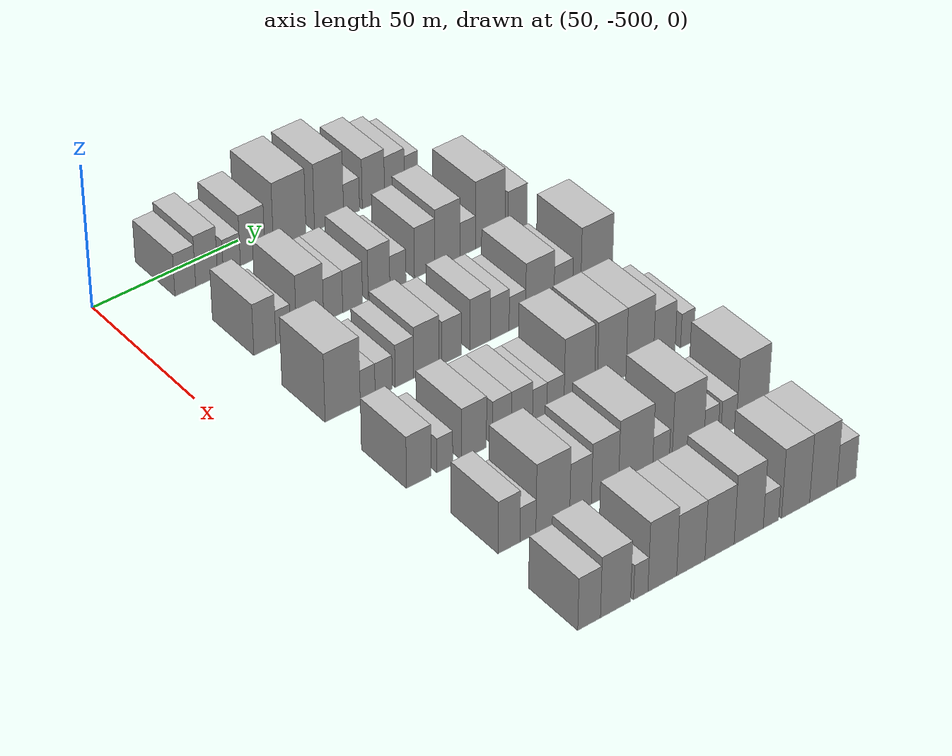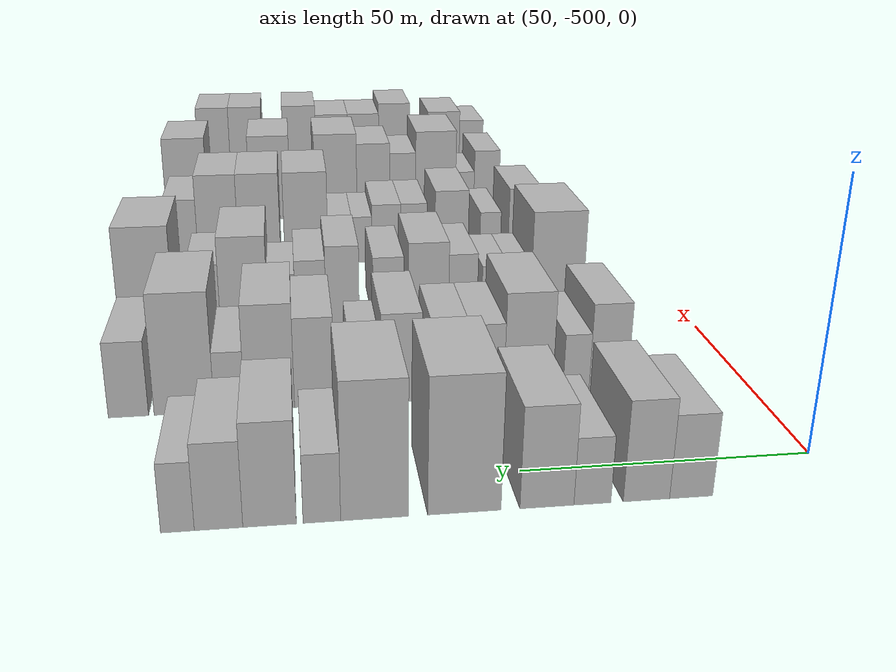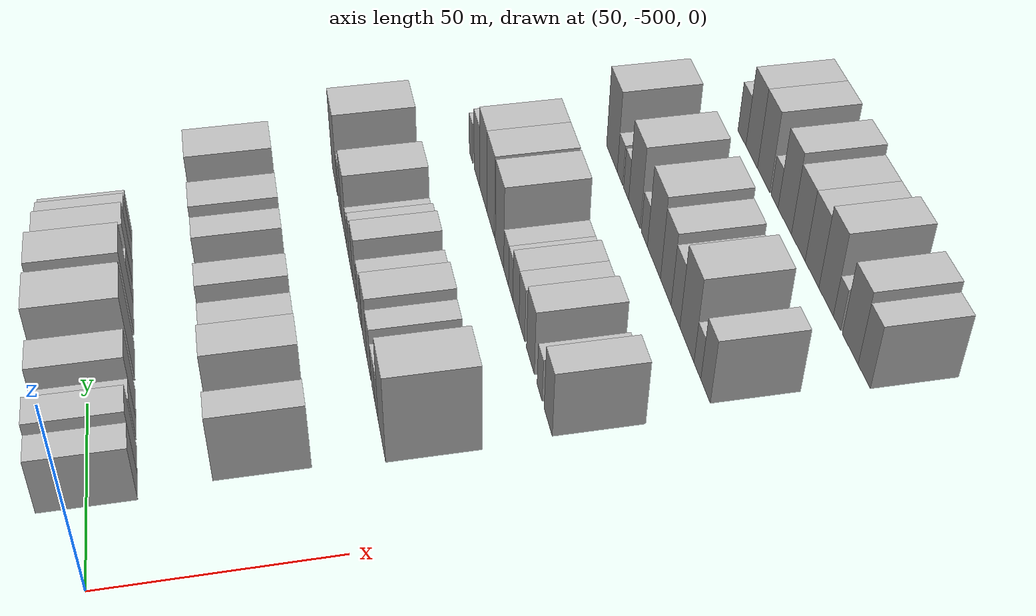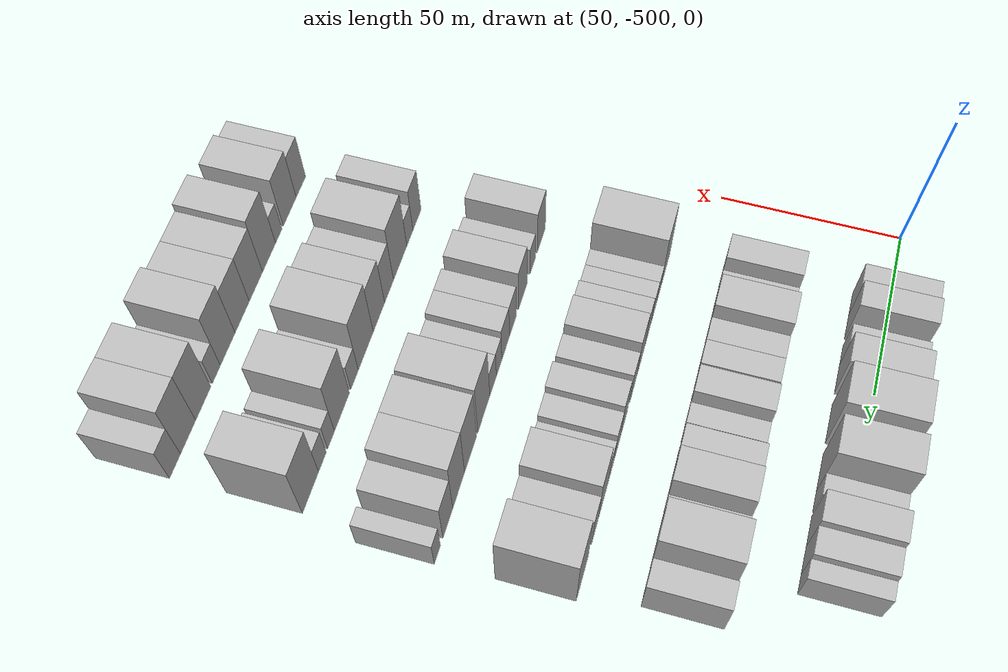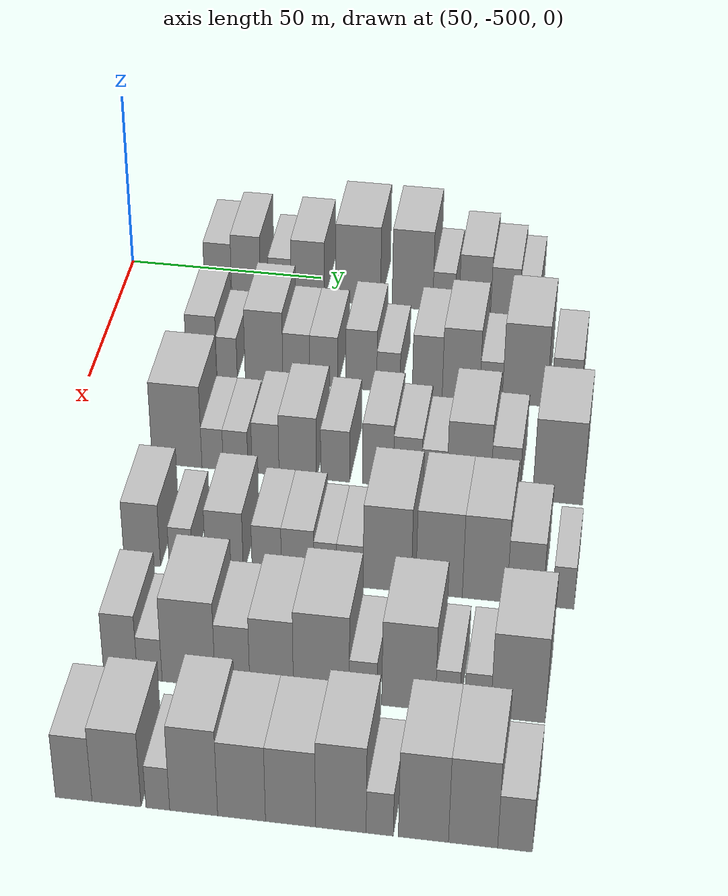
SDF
<sdf version="1.6">
 <world name="default">
  <model name="building_12">
   <static>1</static>
   <pose>50.0000 -475.3370 0 0.000000 0.000000 0.000000</pose>
   <link name="link">
    <pose>0 0 7.50 0 0 0</pose>
    <collision name="collision"><geometry><box><size>20.0000 7.0888 15.0000</size></box></geometry></collision>
    <visual name="visual">
     <cast_shadows>0</cast_shadows>
     <geometry><box><size>20.0000 7.0888 15.0000</size></box></geometry>
     <material>
      <script>
       <uri>model://HANNAS_wall/materials/scripts</uri>
       <uri>model://HANNAS_wall/materials/textures</uri>
       <name>vrc/HANNAS_wall</name>
      </script>
     </material>
    </visual>
   </link>
  </model>
  <model name="building_13">
   <static>1</static>
   <pose>50.0000 -468.0151 0 0.000000 0.000000 0.000000</pose>
   <link name="link">
    <pose>0 0 9.00 0 0 0</pose>
    <collision name="collision"><geometry><box><size>20.0000 7.5550 18.0000</size></box></geometry></collision>
    <visual name="visual">
     <cast_shadows>0</cast_shadows>
     <geometry><box><size>20.0000 7.5550 18.0000</size></box></geometry>
     <material>
      <script>
       <uri>model://HANNAS_wall/materials/scripts</uri>
       <uri>model://HANNAS_wall/materials/textures</uri>
       <name>vrc/HANNAS_wall</name>
      </script>
     </material>
    </visual>
   </link>
  </model>
  <model name="building_14">
   <static>1</static>
   <pose>50.0000 -459.2626 0 0.000000 0.000000 0.000000</pose>
   <link name="link">
    <pose>0 0 6.00 0 0 0</pose>
    <collision name="collision"><geometry><box><size>20.0000 5.9500 12.0000</size></box></geometry></collision>
    <visual name="visual">
     <cast_shadows>0</cast_shadows>
     <geometry><box><size>20.0000 5.9500 12.0000</size></box></geometry>
     <material>
      <script>
       <uri>model://HANNAS_wall/materials/scripts</uri>
       <uri>model://HANNAS_wall/materials/textures</uri>
       <name>vrc/HANNAS_wall</name>
      </script>
     </material>
    </visual>
   </link>
  </model>
  <model name="building_15">
   <static>1</static>
   <pose>50.0000 -451.9776 0 0.000000 0.000000 0.000000</pose>
   <link name="link">
    <pose>0 0 9.00 0 0 0</pose>
    <collision name="collision"><geometry><box><size>20.0000 8.6199 18.0000</size></box></geometry></collision>
    <visual name="visual">
     <cast_shadows>0</cast_shadows>
     <geometry><box><size>20.0000 8.6199 18.0000</size></box></geometry>
     <material>
      <script>
       <uri>model://HANNAS_wall/materials/scripts</uri>
       <uri>model://HANNAS_wall/materials/textures</uri>
       <name>vrc/HANNAS_wall</name>
      </script>
     </material>
    </visual>
   </link>
  </model>
  <model name="building_16">
   <static>1</static>
   <pose>50.0000 -438.9100 0 0.000000 0.000000 0.000000</pose>
   <link name="link">
    <pose>0 0 12.00 0 0 0</pose>
    <collision name="collision"><geometry><box><size>20.0000 11.5154 24.0000</size></box></geometry></collision>
    <visual name="visual">
     <cast_shadows>0</cast_shadows>
     <geometry><box><size>20.0000 11.5154 24.0000</size></box></geometry>
     <material>
      <script>
       <uri>model://HANNAS_wall/materials/scripts</uri>
       <uri>model://HANNAS_wall/materials/textures</uri>
       <name>vrc/HANNAS_wall</name>
      </script>
     </material>
    </visual>
   </link>
  </model>
  <model name="building_17">
   <static>1</static>
   <pose>50.0000 -424.9383 0 0.000000 0.000000 0.000000</pose>
   <link name="link">
    <pose>0 0 12.00 0 0 0</pose>
    <collision name="collision"><geometry><box><size>20.0000 10.4280 24.0000</size></box></geometry></collision>
    <visual name="visual">
     <cast_shadows>0</cast_shadows>
     <geometry><box><size>20.0000 10.4280 24.0000</size></box></geometry>
     <material>
      <script>
       <uri>model://HANNAS_wall/materials/scripts</uri>
       <uri>model://HANNAS_wall/materials/textures</uri>
       <name>vrc/HANNAS_wall</name>
      </script>
     </material>
    </visual>
   </link>
  </model>
  <model name="building_18">
   <static>1</static>
   <pose>50.0000 -416.8632 0 0.000000 0.000000 0.000000</pose>
   <link name="link">
    <pose>0 0 6.00 0 0 0</pose>
    <collision name="collision"><geometry><box><size>20.0000 5.7221 12.0000</size></box></geometry></collision>
    <visual name="visual">
     <cast_shadows>0</cast_shadows>
     <geometry><box><size>20.0000 5.7221 12.0000</size></box></geometry>
     <material>
      <script>
       <uri>model://HANNAS_wall/materials/scripts</uri>
       <uri>model://HANNAS_wall/materials/textures</uri>
       <name>vrc/HANNAS_wall</name>
      </script>
     </material>
    </visual>
   </link>
  </model>
  <model name="building_19">
   <static>1</static>
   <pose>50.0000 -408.9586 0 0.000000 0.000000 0.000000</pose>
   <link name="link">
    <pose>0 0 9.00 0 0 0</pose>
    <collision name="collision"><geometry><box><size>20.0000 8.0872 18.0000</size></box></geometry></collision>
    <visual name="visual">
     <cast_shadows>0</cast_shadows>
     <geometry><box><size>20.0000 8.0872 18.0000</size></box></geometry>
     <material>
      <script>
       <uri>model://HANNAS_wall/materials/scripts</uri>
       <uri>model://HANNAS_wall/materials/textures</uri>
       <name>vrc/HANNAS_wall</name>
      </script>
     </material>
    </visual>
   </link>
  </model>
  <model name="building_20">
   <static>1</static>
   <pose>50.0000 -401.2958 0 0.000000 0.000000 0.000000</pose>
   <link name="link">
    <pose>0 0 7.50 0 0 0</pose>
    <collision name="collision"><geometry><box><size>20.0000 7.2384 15.0000</size></box></geometry></collision>
    <visual name="visual">
     <cast_shadows>0</cast_shadows>
     <geometry><box><size>20.0000 7.2384 15.0000</size></box></geometry>
     <material>
      <script>
       <uri>model://HANNAS_wall/materials/scripts</uri>
       <uri>model://HANNAS_wall/materials/textures</uri>
       <name>vrc/HANNAS_wall</name>
      </script>
     </material>
    </visual>
   </link>
  </model>
  <model name="building_21">
   <static>1</static>
   <pose>50.0000 -395.1728 0 0.000000 0.000000 0.000000</pose>
   <link name="link">
    <pose>0 0 6.00 0 0 0</pose>
    <collision name="collision"><geometry><box><size>20.0000 5.0076 12.0000</size></box></geometry></collision>
    <visual name="visual">
     <cast_shadows>0</cast_shadows>
     <geometry><box><size>20.0000 5.0076 12.0000</size></box></geometry>
     <material>
      <script>
       <uri>model://HANNAS_wall/materials/scripts</uri>
       <uri>model://HANNAS_wall/materials/textures</uri>
       <name>vrc/HANNAS_wall</name>
      </script>
     </material>
    </visual>
   </link>
  </model>
  <model name="building_140">
   <static>1</static>
   <pose>85.0000 -472.7202 0 0.000000 0.000000 0.000000</pose>
   <link name="link">
    <pose>0 0 9.00 0 0 0</pose>
    <collision name="collision"><geometry><box><size>20.0000 7.5059 18.0000</size></box></geometry></collision>
    <visual name="visual">
     <cast_shadows>0</cast_shadows>
     <geometry><box><size>20.0000 7.5059 18.0000</size></box></geometry>
     <material>
      <script>
       <uri>model://HANNAS_wall/materials/scripts</uri>
       <uri>model://HANNAS_wall/materials/textures</uri>
       <name>vrc/HANNAS_wall</name>
      </script>
     </material>
    </visual>
   </link>
  </model>
  <model name="building_141">
   <static>1</static>
   <pose>85.0000 -466.4305 0 0.000000 0.000000 0.000000</pose>
   <link name="link">
    <pose>0 0 6.00 0 0 0</pose>
    <collision name="collision"><geometry><box><size>20.0000 5.0734 12.0000</size></box></geometry></collision>
    <visual name="visual">
     <cast_shadows>0</cast_shadows>
     <geometry><box><size>20.0000 5.0734 12.0000</size></box></geometry>
     <material>
      <script>
       <uri>model://HANNAS_wall/materials/scripts</uri>
       <uri>model://HANNAS_wall/materials/textures</uri>
       <name>vrc/HANNAS_wall</name>
      </script>
     </material>
    </visual>
   </link>
  </model>
  <model name="building_142">
   <static>1</static>
   <pose>85.0000 -457.2018 0 0.000000 0.000000 0.000000</pose>
   <link name="link">
    <pose>0 0 10.50 0 0 0</pose>
    <collision name="collision"><geometry><box><size>20.0000 9.3842 21.0000</size></box></geometry></collision>
    <visual name="visual">
     <cast_shadows>0</cast_shadows>
     <geometry><box><size>20.0000 9.3842 21.0000</size></box></geometry>
     <material>
      <script>
       <uri>model://HANNAS_wall/materials/scripts</uri>
       <uri>model://HANNAS_wall/materials/textures</uri>
       <name>vrc/HANNAS_wall</name>
      </script>
     </material>
    </visual>
   </link>
  </model>
  <model name="building_143">
   <static>1</static>
   <pose>85.0000 -449.2077 0 0.000000 0.000000 0.000000</pose>
   <link name="link">
    <pose>0 0 7.50 0 0 0</pose>
    <collision name="collision"><geometry><box><size>20.0000 6.6040 15.0000</size></box></geometry></collision>
    <visual name="visual">
     <cast_shadows>0</cast_shadows>
     <geometry><box><size>20.0000 6.6040 15.0000</size></box></geometry>
     <material>
      <script>
       <uri>model://HANNAS_wall/materials/scripts</uri>
       <uri>model://HANNAS_wall/materials/textures</uri>
       <name>vrc/HANNAS_wall</name>
      </script>
     </material>
    </visual>
   </link>
  </model>
  <model name="building_144">
   <static>1</static>
   <pose>85.0000 -442.4402 0 0.000000 0.000000 0.000000</pose>
   <link name="link">
    <pose>0 0 7.50 0 0 0</pose>
    <collision name="collision"><geometry><box><size>20.0000 6.9310 15.0000</size></box></geometry></collision>
    <visual name="visual">
     <cast_shadows>0</cast_shadows>
     <geometry><box><size>20.0000 6.9310 15.0000</size></box></geometry>
     <material>
      <script>
       <uri>model://HANNAS_wall/materials/scripts</uri>
       <uri>model://HANNAS_wall/materials/textures</uri>
       <name>vrc/HANNAS_wall</name>
      </script>
     </material>
    </visual>
   </link>
  </model>
  <model name="building_145">
   <static>1</static>
   <pose>85.0000 -433.1577 0 0.000000 0.000000 0.000000</pose>
   <link name="link">
    <pose>0 0 9.00 0 0 0</pose>
    <collision name="collision"><geometry><box><size>20.0000 7.6341 18.0000</size></box></geometry></collision>
    <visual name="visual">
     <cast_shadows>0</cast_shadows>
     <geometry><box><size>20.0000 7.6341 18.0000</size></box></geometry>
     <material>
      <script>
       <uri>model://HANNAS_wall/materials/scripts</uri>
       <uri>model://HANNAS_wall/materials/textures</uri>
       <name>vrc/HANNAS_wall</name>
      </script>
     </material>
    </visual>
   </link>
  </model>
  <model name="building_146">
   <static>1</static>
   <pose>85.0000 -426.4734 0 0.000000 0.000000 0.000000</pose>
   <link name="link">
    <pose>0 0 6.00 0 0 0</pose>
    <collision name="collision"><geometry><box><size>20.0000 5.7345 12.0000</size></box></geometry></collision>
    <visual name="visual">
     <cast_shadows>0</cast_shadows>
     <geometry><box><size>20.0000 5.7345 12.0000</size></box></geometry>
     <material>
      <script>
       <uri>model://HANNAS_wall/materials/scripts</uri>
       <uri>model://HANNAS_wall/materials/textures</uri>
       <name>vrc/HANNAS_wall</name>
      </script>
     </material>
    </visual>
   </link>
  </model>
  <model name="building_147">
   <static>1</static>
   <pose>85.0000 -416.9375 0 0.000000 0.000000 0.000000</pose>
   <link name="link">
    <pose>0 0 9.00 0 0 0</pose>
    <collision name="collision"><geometry><box><size>20.0000 7.3373 18.0000</size></box></geometry></collision>
    <visual name="visual">
     <cast_shadows>0</cast_shadows>
     <geometry><box><size>20.0000 7.3373 18.0000</size></box></geometry>
     <material>
      <script>
       <uri>model://HANNAS_wall/materials/scripts</uri>
       <uri>model://HANNAS_wall/materials/textures</uri>
       <name>vrc/HANNAS_wall</name>
      </script>
     </material>
    </visual>
   </link>
  </model>
  <model name="building_148">
   <static>1</static>
   <pose>85.0000 -408.7095 0 0.000000 0.000000 0.000000</pose>
   <link name="link">
    <pose>0 0 10.50 0 0 0</pose>
    <collision name="collision"><geometry><box><size>20.0000 9.1188 21.0000</size></box></geometry></collision>
    <visual name="visual">
     <cast_shadows>0</cast_shadows>
     <geometry><box><size>20.0000 9.1188 21.0000</size></box></geometry>
     <material>
      <script>
       <uri>model://HANNAS_wall/materials/scripts</uri>
       <uri>model://HANNAS_wall/materials/textures</uri>
       <name>vrc/HANNAS_wall</name>
      </script>
     </material>
    </visual>
   </link>
  </model>
  <model name="building_149">
   <static>1</static>
   <pose>85.0000 -401.4032 0 0.000000 0.000000 0.000000</pose>
   <link name="link">
    <pose>0 0 6.00 0 0 0</pose>
    <collision name="collision"><geometry><box><size>20.0000 5.4938 12.0000</size></box></geometry></collision>
    <visual name="visual">
     <cast_shadows>0</cast_shadows>
     <geometry><box><size>20.0000 5.4938 12.0000</size></box></geometry>
     <material>
      <script>
       <uri>model://HANNAS_wall/materials/scripts</uri>
       <uri>model://HANNAS_wall/materials/textures</uri>
       <name>vrc/HANNAS_wall</name>
      </script>
     </material>
    </visual>
   </link>
  </model>
  <model name="building_150">
   <static>1</static>
   <pose>85.0000 -393.2555 0 0.000000 0.000000 0.000000</pose>
   <link name="link">
    <pose>0 0 12.00 0 0 0</pose>
    <collision name="collision"><geometry><box><size>20.0000 10.8017 24.0000</size></box></geometry></collision>
    <visual name="visual">
     <cast_shadows>0</cast_shadows>
     <geometry><box><size>20.0000 10.8017 24.0000</size></box></geometry>
     <material>
      <script>
       <uri>model://HANNAS_wall/materials/scripts</uri>
       <uri>model://HANNAS_wall/materials/textures</uri>
       <name>vrc/HANNAS_wall</name>
      </script>
     </material>
    </visual>
   </link>
  </model>
  <model name="building_151">
   <static>1</static>
   <pose>85.0000 -383.2777 0 0.000000 0.000000 0.000000</pose>
   <link name="link">
    <pose>0 0 7.50 0 0 0</pose>
    <collision name="collision"><geometry><box><size>20.0000 7.1538 15.0000</size></box></geometry></collision>
    <visual name="visual">
     <cast_shadows>0</cast_shadows>
     <geometry><box><size>20.0000 7.1538 15.0000</size></box></geometry>
     <material>
      <script>
       <uri>model://HANNAS_wall/materials/scripts</uri>
       <uri>model://HANNAS_wall/materials/textures</uri>
       <name>vrc/HANNAS_wall</name>
      </script>
     </material>
    </visual>
   </link>
  </model>
  <model name="building_264">
   <static>1</static>
   <pose>120.0000 -471.7548 0 0.000000 0.000000 0.000000</pose>
   <link name="link">
    <pose>0 0 12.00 0 0 0</pose>
    <collision name="collision"><geometry><box><size>20.0000 11.8644 24.0000</size></box></geometry></collision>
    <visual name="visual">
     <cast_shadows>0</cast_shadows>
     <geometry><box><size>20.0000 11.8644 24.0000</size></box></geometry>
     <material>
      <script>
       <uri>model://HANNAS_wall/materials/scripts</uri>
       <uri>model://HANNAS_wall/materials/textures</uri>
       <name>vrc/HANNAS_wall</name>
      </script>
     </material>
    </visual>
   </link>
  </model>
  <model name="building_265">
   <static>1</static>
   <pose>120.0000 -463.2847 0 0.000000 0.000000 0.000000</pose>
   <link name="link">
    <pose>0 0 6.00 0 0 0</pose>
    <collision name="collision"><geometry><box><size>20.0000 5.0758 12.0000</size></box></geometry></collision>
    <visual name="visual">
     <cast_shadows>0</cast_shadows>
     <geometry><box><size>20.0000 5.0758 12.0000</size></box></geometry>
     <material>
      <script>
       <uri>model://HANNAS_wall/materials/scripts</uri>
       <uri>model://HANNAS_wall/materials/textures</uri>
       <name>vrc/HANNAS_wall</name>
      </script>
     </material>
    </visual>
   </link>
  </model>
  <model name="building_266">
   <static>1</static>
   <pose>120.0000 -457.8192 0 0.000000 0.000000 0.000000</pose>
   <link name="link">
    <pose>0 0 6.00 0 0 0</pose>
    <collision name="collision"><geometry><box><size>20.0000 5.8553 12.0000</size></box></geometry></collision>
    <visual name="visual">
     <cast_shadows>0</cast_shadows>
     <geometry><box><size>20.0000 5.8553 12.0000</size></box></geometry>
     <material>
      <script>
       <uri>model://HANNAS_wall/materials/scripts</uri>
       <uri>model://HANNAS_wall/materials/textures</uri>
       <name>vrc/HANNAS_wall</name>
      </script>
     </material>
    </visual>
   </link>
  </model>
  <model name="building_267">
   <static>1</static>
   <pose>120.0000 -450.7092 0 0.000000 0.000000 0.000000</pose>
   <link name="link">
    <pose>0 0 7.50 0 0 0</pose>
    <collision name="collision"><geometry><box><size>20.0000 6.3647 15.0000</size></box></geometry></collision>
    <visual name="visual">
     <cast_shadows>0</cast_shadows>
     <geometry><box><size>20.0000 6.3647 15.0000</size></box></geometry>
     <material>
      <script>
       <uri>model://HANNAS_wall/materials/scripts</uri>
       <uri>model://HANNAS_wall/materials/textures</uri>
       <name>vrc/HANNAS_wall</name>
      </script>
     </material>
    </visual>
   </link>
  </model>
  <model name="building_268">
   <static>1</static>
   <pose>120.0000 -443.1067 0 0.000000 0.000000 0.000000</pose>
   <link name="link">
    <pose>0 0 9.00 0 0 0</pose>
    <collision name="collision"><geometry><box><size>20.0000 8.8401 18.0000</size></box></geometry></collision>
    <visual name="visual">
     <cast_shadows>0</cast_shadows>
     <geometry><box><size>20.0000 8.8401 18.0000</size></box></geometry>
     <material>
      <script>
       <uri>model://HANNAS_wall/materials/scripts</uri>
       <uri>model://HANNAS_wall/materials/textures</uri>
       <name>vrc/HANNAS_wall</name>
      </script>
     </material>
    </visual>
   </link>
  </model>
  <model name="building_269">
   <static>1</static>
   <pose>120.0000 -434.2948 0 0.000000 0.000000 0.000000</pose>
   <link name="link">
    <pose>0 0 7.50 0 0 0</pose>
    <collision name="collision"><geometry><box><size>20.0000 6.7836 15.0000</size></box></geometry></collision>
    <visual name="visual">
     <cast_shadows>0</cast_shadows>
     <geometry><box><size>20.0000 6.7836 15.0000</size></box></geometry>
     <material>
      <script>
       <uri>model://HANNAS_wall/materials/scripts</uri>
       <uri>model://HANNAS_wall/materials/textures</uri>
       <name>vrc/HANNAS_wall</name>
      </script>
     </material>
    </visual>
   </link>
  </model>
  <model name="building_270">
   <static>1</static>
   <pose>120.0000 -424.2870 0 0.000000 0.000000 0.000000</pose>
   <link name="link">
    <pose>0 0 9.00 0 0 0</pose>
    <collision name="collision"><geometry><box><size>20.0000 7.2321 18.0000</size></box></geometry></collision>
    <visual name="visual">
     <cast_shadows>0</cast_shadows>
     <geometry><box><size>20.0000 7.2321 18.0000</size></box></geometry>
     <material>
      <script>
       <uri>model://HANNAS_wall/materials/scripts</uri>
       <uri>model://HANNAS_wall/materials/textures</uri>
       <name>vrc/HANNAS_wall</name>
      </script>
     </material>
    </visual>
   </link>
  </model>
  <model name="building_271">
   <static>1</static>
   <pose>120.0000 -417.3758 0 0.000000 0.000000 0.000000</pose>
   <link name="link">
    <pose>0 0 7.50 0 0 0</pose>
    <collision name="collision"><geometry><box><size>20.0000 6.5903 15.0000</size></box></geometry></collision>
    <visual name="visual">
     <cast_shadows>0</cast_shadows>
     <geometry><box><size>20.0000 6.5903 15.0000</size></box></geometry>
     <material>
      <script>
       <uri>model://HANNAS_wall/materials/scripts</uri>
       <uri>model://HANNAS_wall/materials/textures</uri>
       <name>vrc/HANNAS_wall</name>
      </script>
     </material>
    </visual>
   </link>
  </model>
  <model name="building_272">
   <static>1</static>
   <pose>120.0000 -411.1416 0 0.000000 0.000000 0.000000</pose>
   <link name="link">
    <pose>0 0 6.00 0 0 0</pose>
    <collision name="collision"><geometry><box><size>20.0000 5.8781 12.0000</size></box></geometry></collision>
    <visual name="visual">
     <cast_shadows>0</cast_shadows>
     <geometry><box><size>20.0000 5.8781 12.0000</size></box></geometry>
     <material>
      <script>
       <uri>model://HANNAS_wall/materials/scripts</uri>
       <uri>model://HANNAS_wall/materials/textures</uri>
       <name>vrc/HANNAS_wall</name>
      </script>
     </material>
    </visual>
   </link>
  </model>
  <model name="building_273">
   <static>1</static>
   <pose>120.0000 -403.1161 0 0.000000 0.000000 0.000000</pose>
   <link name="link">
    <pose>0 0 10.50 0 0 0</pose>
    <collision name="collision"><geometry><box><size>20.0000 10.1729 21.0000</size></box></geometry></collision>
    <visual name="visual">
     <cast_shadows>0</cast_shadows>
     <geometry><box><size>20.0000 10.1729 21.0000</size></box></geometry>
     <material>
      <script>
       <uri>model://HANNAS_wall/materials/scripts</uri>
       <uri>model://HANNAS_wall/materials/textures</uri>
       <name>vrc/HANNAS_wall</name>
      </script>
     </material>
    </visual>
   </link>
  </model>
  <model name="building_274">
   <static>1</static>
   <pose>120.0000 -394.6801 0 0.000000 0.000000 0.000000</pose>
   <link name="link">
    <pose>0 0 7.50 0 0 0</pose>
    <collision name="collision"><geometry><box><size>20.0000 6.6991 15.0000</size></box></geometry></collision>
    <visual name="visual">
     <cast_shadows>0</cast_shadows>
     <geometry><box><size>20.0000 6.6991 15.0000</size></box></geometry>
     <material>
      <script>
       <uri>model://HANNAS_wall/materials/scripts</uri>
       <uri>model://HANNAS_wall/materials/textures</uri>
       <name>vrc/HANNAS_wall</name>
      </script>
     </material>
    </visual>
   </link>
  </model>
  <model name="building_275">
   <static>1</static>
   <pose>120.0000 -382.5510 0 0.000000 0.000000 0.000000</pose>
   <link name="link">
    <pose>0 0 12.00 0 0 0</pose>
    <collision name="collision"><geometry><box><size>20.0000 11.5590 24.0000</size></box></geometry></collision>
    <visual name="visual">
     <cast_shadows>0</cast_shadows>
     <geometry><box><size>20.0000 11.5590 24.0000</size></box></geometry>
     <material>
      <script>
       <uri>model://HANNAS_wall/materials/scripts</uri>
       <uri>model://HANNAS_wall/materials/textures</uri>
       <name>vrc/HANNAS_wall</name>
      </script>
     </material>
    </visual>
   </link>
  </model>
  <model name="building_391">
   <static>1</static>
   <pose>155.0000 -472.4507 0 0.000000 0.000000 0.000000</pose>
   <link name="link">
    <pose>0 0 9.00 0 0 0</pose>
    <collision name="collision"><geometry><box><size>20.0000 8.2414 18.0000</size></box></geometry></collision>
    <visual name="visual">
     <cast_shadows>0</cast_shadows>
     <geometry><box><size>20.0000 8.2414 18.0000</size></box></geometry>
     <material>
      <script>
       <uri>model://HANNAS_wall/materials/scripts</uri>
       <uri>model://HANNAS_wall/materials/textures</uri>
       <name>vrc/HANNAS_wall</name>
      </script>
     </material>
    </visual>
   </link>
  </model>
  <model name="building_392">
   <static>1</static>
   <pose>155.0000 -463.6954 0 0.000000 0.000000 0.000000</pose>
   <link name="link">
    <pose>0 0 6.00 0 0 0</pose>
    <collision name="collision"><geometry><box><size>20.0000 5.2692 12.0000</size></box></geometry></collision>
    <visual name="visual">
     <cast_shadows>0</cast_shadows>
     <geometry><box><size>20.0000 5.2692 12.0000</size></box></geometry>
     <material>
      <script>
       <uri>model://HANNAS_wall/materials/scripts</uri>
       <uri>model://HANNAS_wall/materials/textures</uri>
       <name>vrc/HANNAS_wall</name>
      </script>
     </material>
    </visual>
   </link>
  </model>
  <model name="building_393">
   <static>1</static>
   <pose>155.0000 -453.8193 0 0.000000 0.000000 0.000000</pose>
   <link name="link">
    <pose>0 0 9.00 0 0 0</pose>
    <collision name="collision"><geometry><box><size>20.0000 8.4830 18.0000</size></box></geometry></collision>
    <visual name="visual">
     <cast_shadows>0</cast_shadows>
     <geometry><box><size>20.0000 8.4830 18.0000</size></box></geometry>
     <material>
      <script>
       <uri>model://HANNAS_wall/materials/scripts</uri>
       <uri>model://HANNAS_wall/materials/textures</uri>
       <name>vrc/HANNAS_wall</name>
      </script>
     </material>
    </visual>
   </link>
  </model>
  <model name="building_394">
   <static>1</static>
   <pose>155.0000 -444.2890 0 0.000000 0.000000 0.000000</pose>
   <link name="link">
    <pose>0 0 7.50 0 0 0</pose>
    <collision name="collision"><geometry><box><size>20.0000 6.5775 15.0000</size></box></geometry></collision>
    <visual name="visual">
     <cast_shadows>0</cast_shadows>
     <geometry><box><size>20.0000 6.5775 15.0000</size></box></geometry>
     <material>
      <script>
       <uri>model://HANNAS_wall/materials/scripts</uri>
       <uri>model://HANNAS_wall/materials/textures</uri>
       <name>vrc/HANNAS_wall</name>
      </script>
     </material>
    </visual>
   </link>
  </model>
  <model name="building_395">
   <static>1</static>
   <pose>155.0000 -437.3744 0 0.000000 0.000000 0.000000</pose>
   <link name="link">
    <pose>0 0 7.50 0 0 0</pose>
    <collision name="collision"><geometry><box><size>20.0000 7.2517 15.0000</size></box></geometry></collision>
    <visual name="visual">
     <cast_shadows>0</cast_shadows>
     <geometry><box><size>20.0000 7.2517 15.0000</size></box></geometry>
     <material>
      <script>
       <uri>model://HANNAS_wall/materials/scripts</uri>
       <uri>model://HANNAS_wall/materials/textures</uri>
       <name>vrc/HANNAS_wall</name>
      </script>
     </material>
    </visual>
   </link>
  </model>
  <model name="building_396">
   <static>1</static>
   <pose>155.0000 -431.2392 0 0.000000 0.000000 0.000000</pose>
   <link name="link">
    <pose>0 0 6.00 0 0 0</pose>
    <collision name="collision"><geometry><box><size>20.0000 5.0187 12.0000</size></box></geometry></collision>
    <visual name="visual">
     <cast_shadows>0</cast_shadows>
     <geometry><box><size>20.0000 5.0187 12.0000</size></box></geometry>
     <material>
      <script>
       <uri>model://HANNAS_wall/materials/scripts</uri>
       <uri>model://HANNAS_wall/materials/textures</uri>
       <name>vrc/HANNAS_wall</name>
      </script>
     </material>
    </visual>
   </link>
  </model>
  <model name="building_397">
   <static>1</static>
   <pose>155.0000 -425.7473 0 0.000000 0.000000 0.000000</pose>
   <link name="link">
    <pose>0 0 6.00 0 0 0</pose>
    <collision name="collision"><geometry><box><size>20.0000 5.9651 12.0000</size></box></geometry></collision>
    <visual name="visual">
     <cast_shadows>0</cast_shadows>
     <geometry><box><size>20.0000 5.9651 12.0000</size></box></geometry>
     <material>
      <script>
       <uri>model://HANNAS_wall/materials/scripts</uri>
       <uri>model://HANNAS_wall/materials/textures</uri>
       <name>vrc/HANNAS_wall</name>
      </script>
     </material>
    </visual>
   </link>
  </model>
  <model name="building_398">
   <static>1</static>
   <pose>155.0000 -417.4258 0 0.000000 0.000000 0.000000</pose>
   <link name="link">
    <pose>0 0 12.00 0 0 0</pose>
    <collision name="collision"><geometry><box><size>20.0000 10.6778 24.0000</size></box></geometry></collision>
    <visual name="visual">
     <cast_shadows>0</cast_shadows>
     <geometry><box><size>20.0000 10.6778 24.0000</size></box></geometry>
     <material>
      <script>
       <uri>model://HANNAS_wall/materials/scripts</uri>
       <uri>model://HANNAS_wall/materials/textures</uri>
       <name>vrc/HANNAS_wall</name>
      </script>
     </material>
    </visual>
   </link>
  </model>
  <model name="building_399">
   <static>1</static>
   <pose>155.0000 -405.9414 0 0.000000 0.000000 0.000000</pose>
   <link name="link">
    <pose>0 0 12.00 0 0 0</pose>
    <collision name="collision"><geometry><box><size>20.0000 10.2910 24.0000</size></box></geometry></collision>
    <visual name="visual">
     <cast_shadows>0</cast_shadows>
     <geometry><box><size>20.0000 10.2910 24.0000</size></box></geometry>
     <material>
      <script>
       <uri>model://HANNAS_wall/materials/scripts</uri>
       <uri>model://HANNAS_wall/materials/textures</uri>
       <name>vrc/HANNAS_wall</name>
      </script>
     </material>
    </visual>
   </link>
  </model>
  <model name="building_400">
   <static>1</static>
   <pose>155.0000 -395.8901 0 0.000000 0.000000 0.000000</pose>
   <link name="link">
    <pose>0 0 12.00 0 0 0</pose>
    <collision name="collision"><geometry><box><size>20.0000 9.8117 24.0000</size></box></geometry></collision>
    <visual name="visual">
     <cast_shadows>0</cast_shadows>
     <geometry><box><size>20.0000 9.8117 24.0000</size></box></geometry>
     <material>
      <script>
       <uri>model://HANNAS_wall/materials/scripts</uri>
       <uri>model://HANNAS_wall/materials/textures</uri>
       <name>vrc/HANNAS_wall</name>
      </script>
     </material>
    </visual>
   </link>
  </model>
  <model name="building_401">
   <static>1</static>
   <pose>155.0000 -387.0421 0 0.000000 0.000000 0.000000</pose>
   <link name="link">
    <pose>0 0 9.00 0 0 0</pose>
    <collision name="collision"><geometry><box><size>20.0000 7.8844 18.0000</size></box></geometry></collision>
    <visual name="visual">
     <cast_shadows>0</cast_shadows>
     <geometry><box><size>20.0000 7.8844 18.0000</size></box></geometry>
     <material>
      <script>
       <uri>model://HANNAS_wall/materials/scripts</uri>
       <uri>model://HANNAS_wall/materials/textures</uri>
       <name>vrc/HANNAS_wall</name>
      </script>
     </material>
    </visual>
   </link>
  </model>
  <model name="building_402">
   <static>1</static>
   <pose>155.0000 -378.6883 0 0.000000 0.000000 0.000000</pose>
   <link name="link">
    <pose>0 0 6.00 0 0 0</pose>
    <collision name="collision"><geometry><box><size>20.0000 4.8232 12.0000</size></box></geometry></collision>
    <visual name="visual">
     <cast_shadows>0</cast_shadows>
     <geometry><box><size>20.0000 4.8232 12.0000</size></box></geometry>
     <material>
      <script>
       <uri>model://HANNAS_wall/materials/scripts</uri>
       <uri>model://HANNAS_wall/materials/textures</uri>
       <name>vrc/HANNAS_wall</name>
      </script>
     </material>
    </visual>
   </link>
  </model>
  <model name="building_517">
   <static>1</static>
   <pose>190.0000 -469.5481 0 0.000000 0.000000 0.000000</pose>
   <link name="link">
    <pose>0 0 9.00 0 0 0</pose>
    <collision name="collision"><geometry><box><size>20.0000 7.2432 18.0000</size></box></geometry></collision>
    <visual name="visual">
     <cast_shadows>0</cast_shadows>
     <geometry><box><size>20.0000 7.2432 18.0000</size></box></geometry>
     <material>
      <script>
       <uri>model://HANNAS_wall/materials/scripts</uri>
       <uri>model://HANNAS_wall/materials/textures</uri>
       <name>vrc/HANNAS_wall</name>
      </script>
     </material>
    </visual>
   </link>
  </model>
  <model name="building_518">
   <static>1</static>
   <pose>190.0000 -463.2642 0 0.000000 0.000000 0.000000</pose>
   <link name="link">
    <pose>0 0 6.00 0 0 0</pose>
    <collision name="collision"><geometry><box><size>20.0000 5.3247 12.0000</size></box></geometry></collision>
    <visual name="visual">
     <cast_shadows>0</cast_shadows>
     <geometry><box><size>20.0000 5.3247 12.0000</size></box></geometry>
     <material>
      <script>
       <uri>model://HANNAS_wall/materials/scripts</uri>
       <uri>model://HANNAS_wall/materials/textures</uri>
       <name>vrc/HANNAS_wall</name>
      </script>
     </material>
    </visual>
   </link>
  </model>
  <model name="building_519">
   <static>1</static>
   <pose>190.0000 -454.8978 0 0.000000 0.000000 0.000000</pose>
   <link name="link">
    <pose>0 0 12.00 0 0 0</pose>
    <collision name="collision"><geometry><box><size>20.0000 11.4081 24.0000</size></box></geometry></collision>
    <visual name="visual">
     <cast_shadows>0</cast_shadows>
     <geometry><box><size>20.0000 11.4081 24.0000</size></box></geometry>
     <material>
      <script>
       <uri>model://HANNAS_wall/materials/scripts</uri>
       <uri>model://HANNAS_wall/materials/textures</uri>
       <name>vrc/HANNAS_wall</name>
      </script>
     </material>
    </visual>
   </link>
  </model>
  <model name="building_520">
   <static>1</static>
   <pose>190.0000 -445.5015 0 0.000000 0.000000 0.000000</pose>
   <link name="link">
    <pose>0 0 9.00 0 0 0</pose>
    <collision name="collision"><geometry><box><size>20.0000 7.3847 18.0000</size></box></geometry></collision>
    <visual name="visual">
     <cast_shadows>0</cast_shadows>
     <geometry><box><size>20.0000 7.3847 18.0000</size></box></geometry>
     <material>
      <script>
       <uri>model://HANNAS_wall/materials/scripts</uri>
       <uri>model://HANNAS_wall/materials/textures</uri>
       <name>vrc/HANNAS_wall</name>
      </script>
     </material>
    </visual>
   </link>
  </model>
  <model name="building_521">
   <static>1</static>
   <pose>190.0000 -437.1798 0 0.000000 0.000000 0.000000</pose>
   <link name="link">
    <pose>0 0 10.50 0 0 0</pose>
    <collision name="collision"><geometry><box><size>20.0000 9.2586 21.0000</size></box></geometry></collision>
    <visual name="visual">
     <cast_shadows>0</cast_shadows>
     <geometry><box><size>20.0000 9.2586 21.0000</size></box></geometry>
     <material>
      <script>
       <uri>model://HANNAS_wall/materials/scripts</uri>
       <uri>model://HANNAS_wall/materials/textures</uri>
       <name>vrc/HANNAS_wall</name>
      </script>
     </material>
    </visual>
   </link>
  </model>
  <model name="building_522">
   <static>1</static>
   <pose>190.0000 -426.6482 0 0.000000 0.000000 0.000000</pose>
   <link name="link">
    <pose>0 0 12.00 0 0 0</pose>
    <collision name="collision"><geometry><box><size>20.0000 11.8045 24.0000</size></box></geometry></collision>
    <visual name="visual">
     <cast_shadows>0</cast_shadows>
     <geometry><box><size>20.0000 11.8045 24.0000</size></box></geometry>
     <material>
      <script>
       <uri>model://HANNAS_wall/materials/scripts</uri>
       <uri>model://HANNAS_wall/materials/textures</uri>
       <name>vrc/HANNAS_wall</name>
      </script>
     </material>
    </visual>
   </link>
  </model>
  <model name="building_523">
   <static>1</static>
   <pose>190.0000 -417.8244 0 0.000000 0.000000 0.000000</pose>
   <link name="link">
    <pose>0 0 6.00 0 0 0</pose>
    <collision name="collision"><geometry><box><size>20.0000 5.8431 12.0000</size></box></geometry></collision>
    <visual name="visual">
     <cast_shadows>0</cast_shadows>
     <geometry><box><size>20.0000 5.8431 12.0000</size></box></geometry>
     <material>
      <script>
       <uri>model://HANNAS_wall/materials/scripts</uri>
       <uri>model://HANNAS_wall/materials/textures</uri>
       <name>vrc/HANNAS_wall</name>
      </script>
     </material>
    </visual>
   </link>
  </model>
  <model name="building_524">
   <static>1</static>
   <pose>190.0000 -408.2845 0 0.000000 0.000000 0.000000</pose>
   <link name="link">
    <pose>0 0 12.00 0 0 0</pose>
    <collision name="collision"><geometry><box><size>20.0000 11.2367 24.0000</size></box></geometry></collision>
    <visual name="visual">
     <cast_shadows>0</cast_shadows>
     <geometry><box><size>20.0000 11.2367 24.0000</size></box></geometry>
     <material>
      <script>
       <uri>model://HANNAS_wall/materials/scripts</uri>
       <uri>model://HANNAS_wall/materials/textures</uri>
       <name>vrc/HANNAS_wall</name>
      </script>
     </material>
    </visual>
   </link>
  </model>
  <model name="building_525">
   <static>1</static>
   <pose>190.0000 -400.1375 0 0.000000 0.000000 0.000000</pose>
   <link name="link">
    <pose>0 0 6.00 0 0 0</pose>
    <collision name="collision"><geometry><box><size>20.0000 5.0574 12.0000</size></box></geometry></collision>
    <visual name="visual">
     <cast_shadows>0</cast_shadows>
     <geometry><box><size>20.0000 5.0574 12.0000</size></box></geometry>
     <material>
      <script>
       <uri>model://HANNAS_wall/materials/scripts</uri>
       <uri>model://HANNAS_wall/materials/textures</uri>
       <name>vrc/HANNAS_wall</name>
      </script>
     </material>
    </visual>
   </link>
  </model>
  <model name="building_526">
   <static>1</static>
   <pose>190.0000 -393.8646 0 0.000000 0.000000 0.000000</pose>
   <link name="link">
    <pose>0 0 6.00 0 0 0</pose>
    <collision name="collision"><geometry><box><size>20.0000 5.4883 12.0000</size></box></geometry></collision>
    <visual name="visual">
     <cast_shadows>0</cast_shadows>
     <geometry><box><size>20.0000 5.4883 12.0000</size></box></geometry>
     <material>
      <script>
       <uri>model://HANNAS_wall/materials/scripts</uri>
       <uri>model://HANNAS_wall/materials/textures</uri>
       <name>vrc/HANNAS_wall</name>
      </script>
     </material>
    </visual>
   </link>
  </model>
  <model name="building_527">
   <static>1</static>
   <pose>190.0000 -385.4526 0 0.000000 0.000000 0.000000</pose>
   <link name="link">
    <pose>0 0 12.00 0 0 0</pose>
    <collision name="collision"><geometry><box><size>20.0000 11.3357 24.0000</size></box></geometry></collision>
    <visual name="visual">
     <cast_shadows>0</cast_shadows>
     <geometry><box><size>20.0000 11.3357 24.0000</size></box></geometry>
     <material>
      <script>
       <uri>model://HANNAS_wall/materials/scripts</uri>
       <uri>model://HANNAS_wall/materials/textures</uri>
       <name>vrc/HANNAS_wall</name>
      </script>
     </material>
    </visual>
   </link>
  </model>
  <model name="building_642">
   <static>1</static>
   <pose>225.0000 -471.2744 0 0.000000 0.000000 0.000000</pose>
   <link name="link">
    <pose>0 0 9.00 0 0 0</pose>
    <collision name="collision"><geometry><box><size>20.0000 7.4719 18.0000</size></box></geometry></collision>
    <visual name="visual">
     <cast_shadows>0</cast_shadows>
     <geometry><box><size>20.0000 7.4719 18.0000</size></box></geometry>
     <material>
      <script>
       <uri>model://HANNAS_wall/materials/scripts</uri>
       <uri>model://HANNAS_wall/materials/textures</uri>
       <name>vrc/HANNAS_wall</name>
      </script>
     </material>
    </visual>
   </link>
  </model>
  <model name="building_643">
   <static>1</static>
   <pose>225.0000 -462.5380 0 0.000000 0.000000 0.000000</pose>
   <link name="link">
    <pose>0 0 10.50 0 0 0</pose>
    <collision name="collision"><geometry><box><size>20.0000 10.0009 21.0000</size></box></geometry></collision>
    <visual name="visual">
     <cast_shadows>0</cast_shadows>
     <geometry><box><size>20.0000 10.0009 21.0000</size></box></geometry>
     <material>
      <script>
       <uri>model://HANNAS_wall/materials/scripts</uri>
       <uri>model://HANNAS_wall/materials/textures</uri>
       <name>vrc/HANNAS_wall</name>
      </script>
     </material>
    </visual>
   </link>
  </model>
  <model name="building_644">
   <static>1</static>
   <pose>225.0000 -454.1268 0 0.000000 0.000000 0.000000</pose>
   <link name="link">
    <pose>0 0 6.00 0 0 0</pose>
    <collision name="collision"><geometry><box><size>20.0000 4.8215 12.0000</size></box></geometry></collision>
    <visual name="visual">
     <cast_shadows>0</cast_shadows>
     <geometry><box><size>20.0000 4.8215 12.0000</size></box></geometry>
     <material>
      <script>
       <uri>model://HANNAS_wall/materials/scripts</uri>
       <uri>model://HANNAS_wall/materials/textures</uri>
       <name>vrc/HANNAS_wall</name>
      </script>
     </material>
    </visual>
   </link>
  </model>
  <model name="building_645">
   <static>1</static>
   <pose>225.0000 -446.8604 0 0.000000 0.000000 0.000000</pose>
   <link name="link">
    <pose>0 0 12.00 0 0 0</pose>
    <collision name="collision"><geometry><box><size>20.0000 9.7113 24.0000</size></box></geometry></collision>
    <visual name="visual">
     <cast_shadows>0</cast_shadows>
     <geometry><box><size>20.0000 9.7113 24.0000</size></box></geometry>
     <material>
      <script>
       <uri>model://HANNAS_wall/materials/scripts</uri>
       <uri>model://HANNAS_wall/materials/textures</uri>
       <name>vrc/HANNAS_wall</name>
      </script>
     </material>
    </visual>
   </link>
  </model>
  <model name="building_646">
   <static>1</static>
   <pose>225.0000 -437.1905 0 0.000000 0.000000 0.000000</pose>
   <link name="link">
    <pose>0 0 10.50 0 0 0</pose>
    <collision name="collision"><geometry><box><size>20.0000 9.6285 21.0000</size></box></geometry></collision>
    <visual name="visual">
     <cast_shadows>0</cast_shadows>
     <geometry><box><size>20.0000 9.6285 21.0000</size></box></geometry>
     <material>
      <script>
       <uri>model://HANNAS_wall/materials/scripts</uri>
       <uri>model://HANNAS_wall/materials/textures</uri>
       <name>vrc/HANNAS_wall</name>
      </script>
     </material>
    </visual>
   </link>
  </model>
  <model name="building_647">
   <static>1</static>
   <pose>225.0000 -427.3636 0 0.000000 0.000000 0.000000</pose>
   <link name="link">
    <pose>0 0 10.50 0 0 0</pose>
    <collision name="collision"><geometry><box><size>20.0000 10.0254 21.0000</size></box></geometry></collision>
    <visual name="visual">
     <cast_shadows>0</cast_shadows>
     <geometry><box><size>20.0000 10.0254 21.0000</size></box></geometry>
     <material>
      <script>
       <uri>model://HANNAS_wall/materials/scripts</uri>
       <uri>model://HANNAS_wall/materials/textures</uri>
       <name>vrc/HANNAS_wall</name>
      </script>
     </material>
    </visual>
   </link>
  </model>
  <model name="building_648">
   <static>1</static>
   <pose>225.0000 -417.3072 0 0.000000 0.000000 0.000000</pose>
   <link name="link">
    <pose>0 0 12.00 0 0 0</pose>
    <collision name="collision"><geometry><box><size>20.0000 10.0875 24.0000</size></box></geometry></collision>
    <visual name="visual">
     <cast_shadows>0</cast_shadows>
     <geometry><box><size>20.0000 10.0875 24.0000</size></box></geometry>
     <material>
      <script>
       <uri>model://HANNAS_wall/materials/scripts</uri>
       <uri>model://HANNAS_wall/materials/textures</uri>
       <name>vrc/HANNAS_wall</name>
      </script>
     </material>
    </visual>
   </link>
  </model>
  <model name="building_649">
   <static>1</static>
   <pose>225.0000 -409.5601 0 0.000000 0.000000 0.000000</pose>
   <link name="link">
    <pose>0 0 6.00 0 0 0</pose>
    <collision name="collision"><geometry><box><size>20.0000 5.4067 12.0000</size></box></geometry></collision>
    <visual name="visual">
     <cast_shadows>0</cast_shadows>
     <geometry><box><size>20.0000 5.4067 12.0000</size></box></geometry>
     <material>
      <script>
       <uri>model://HANNAS_wall/materials/scripts</uri>
       <uri>model://HANNAS_wall/materials/textures</uri>
       <name>vrc/HANNAS_wall</name>
      </script>
     </material>
    </visual>
   </link>
  </model>
  <model name="building_650">
   <static>1</static>
   <pose>225.0000 -400.9017 0 0.000000 0.000000 0.000000</pose>
   <link name="link">
    <pose>0 0 12.00 0 0 0</pose>
    <collision name="collision"><geometry><box><size>20.0000 9.9100 24.0000</size></box></geometry></collision>
    <visual name="visual">
     <cast_shadows>0</cast_shadows>
     <geometry><box><size>20.0000 9.9100 24.0000</size></box></geometry>
     <material>
      <script>
       <uri>model://HANNAS_wall/materials/scripts</uri>
       <uri>model://HANNAS_wall/materials/textures</uri>
       <name>vrc/HANNAS_wall</name>
      </script>
     </material>
    </visual>
   </link>
  </model>
  <model name="building_651">
   <static>1</static>
   <pose>225.0000 -391.1055 0 0.000000 0.000000 0.000000</pose>
   <link name="link">
    <pose>0 0 12.00 0 0 0</pose>
    <collision name="collision"><geometry><box><size>20.0000 9.6824 24.0000</size></box></geometry></collision>
    <visual name="visual">
     <cast_shadows>0</cast_shadows>
     <geometry><box><size>20.0000 9.6824 24.0000</size></box></geometry>
     <material>
      <script>
       <uri>model://HANNAS_wall/materials/scripts</uri>
       <uri>model://HANNAS_wall/materials/textures</uri>
       <name>vrc/HANNAS_wall</name>
      </script>
     </material>
    </visual>
   </link>
  </model>
  <model name="building_652">
   <static>1</static>
   <pose>225.0000 -382.8509 0 0.000000 0.000000 0.000000</pose>
   <link name="link">
    <pose>0 0 7.50 0 0 0</pose>
    <collision name="collision"><geometry><box><size>20.0000 6.8268 15.0000</size></box></geometry></collision>
    <visual name="visual">
     <cast_shadows>0</cast_shadows>
     <geometry><box><size>20.0000 6.8268 15.0000</size></box></geometry>
     <material>
      <script>
       <uri>model://HANNAS_wall/materials/scripts</uri>
       <uri>model://HANNAS_wall/materials/textures</uri>
       <name>vrc/HANNAS_wall</name>
      </script>
     </material>
    </visual>
   </link>
  </model>
 </world>
</sdf>
